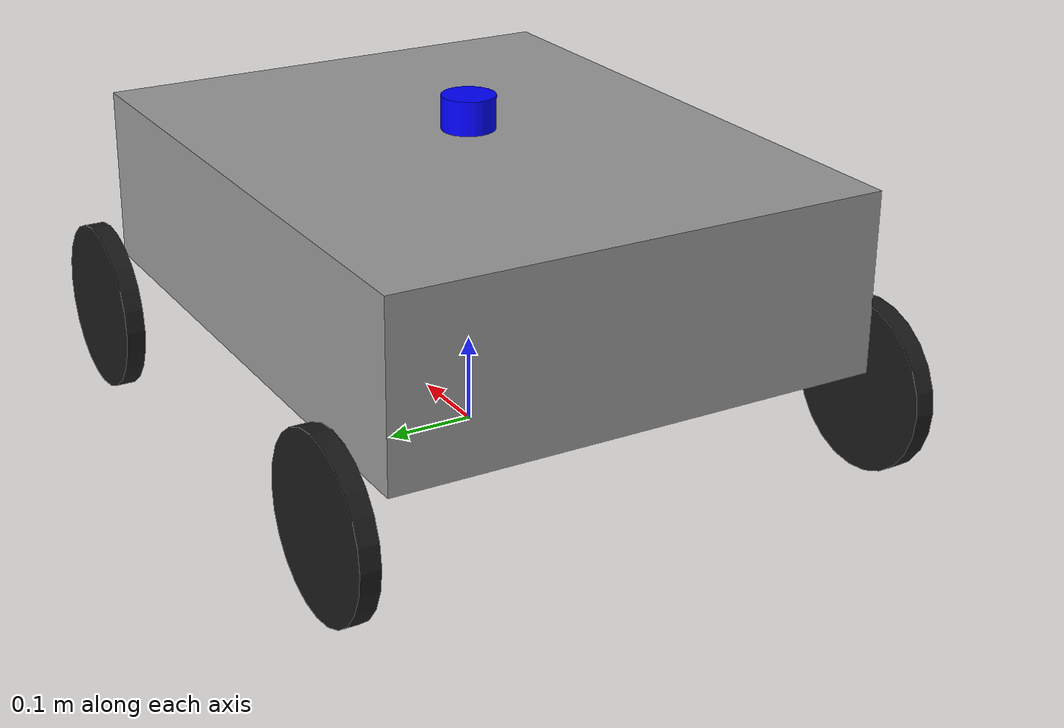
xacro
<?xml version="1.0"?>
<robot name="delivery_bot" xmlns:xacro="http://ros.org/wiki/xacro">

  <!-- Chassis -->
  <link name="base_link">
    <visual>
      <geometry>
        <box size="0.6969 0.55639 0.2"/>
      </geometry>
      <origin xyz="0 0 0.23652" rpy="0 0 0"/>
      <material name="grey">
        <color rgba="0.6 0.6 0.6 1.0"/>
      </material>
    </visual>
    <collision>
      <geometry>
        <box size="0.6969 0.55639 0.2"/>
      </geometry>
      <origin xyz="0 0 0.23652" rpy="0 0 0"/>
    </collision>
    <inertial>
      <mass value="10.0"/>
      <inertia ixx="0.5" ixy="0.0" ixz="0.0" iyy="0.5" iyz="0.0" izz="0.5"/>
      <origin xyz="0 0 0.23652"/>
    </inertial>
  </link>

  <!-- LIDAR -->
  <link name="laser_link">
    <visual>
      <geometry>
        <cylinder radius="0.03" length="0.038"/>
      </geometry>
      <origin xyz="0 0 0.35652" rpy="0 0 0"/>
      <material name="blue">
        <color rgba="0.0 0.0 1.0 1.0"/>
      </material>
    </visual>
    <collision>
      <geometry>
        <cylinder radius="0.03" length="0.038"/>
      </geometry>
      <origin xyz="0 0 0.35652" rpy="0 0 0"/>
    </collision>
    <inertial>
      <mass value="0.2"/>
      <inertia ixx="0.001" ixy="0.0" ixz="0.0" iyy="0.001" iyz="0.0" izz="0.001"/>
      <origin xyz="0 0 0.35652"/>
    </inertial>
  </link>

  <joint name="laser_joint" type="fixed">
    <parent link="base_link"/>
    <child link="laser_link"/>
    <origin xyz="0 0 0.01" rpy="0 0 0"/>
  </joint>

  <!-- IMU -->
  <link name="imu_link">
    <visual>
      <geometry>
        <box size="0.05 0.02 0.02"/>
      </geometry>
      <origin xyz="0 0 0.3" rpy="0 0 0"/>
      <material name="green">
        <color rgba="0.0 1.0 0.0 1.0"/>
      </material>
    </visual>
    <collision>
      <geometry>
        <box size="0.05 0.02 0.02"/>
      </geometry>
      <origin xyz="0 0 0.3" rpy="0 0 0"/>
    </collision>
    <inertial>
      <mass value="0.1"/>
      <inertia ixx="0.0001" ixy="0.0" ixz="0.0" iyy="0.0001" iyz="0.0" izz="0.0001"/>
      <origin xyz="0 0 0.3"/>
    </inertial>
  </link>

  <joint name="imu_joint" type="fixed">
    <parent link="base_link"/>
    <child link="imu_link"/>
    <origin xyz="0 0 0" rpy="0 0 0"/>
  </joint>

  <!-- Wheels (Links + Collisions + Inertials) -->
  <xacro:macro name="wheel" params="name">
    <link name="${name}">
      <visual>
        <geometry>
          <cylinder radius="0.09652" length="0.022"/>
        </geometry>
        <origin xyz="0 0 0" rpy="1.5708 0 0"/>
        <material name="black">
          <color rgba="0.1 0.1 0.1 1.0"/>
        </material>
      </visual>
      <collision>
        <geometry>
          <cylinder radius="0.09652" length="0.022"/>
        </geometry>
        <origin xyz="0 0 0" rpy="1.5708 0 0"/>
      </collision>
      <inertial>
        <mass value="1.0"/>
        <inertia ixx="0.01" ixy="0.0" ixz="0.0" iyy="0.01" iyz="0.0" izz="0.01"/>
        <origin xyz="0 0 0"/>
      </inertial>
    </link>
  </xacro:macro>

  <xacro:wheel name="left_front_wheel"/>
  <xacro:wheel name="left_rear_wheel"/>
  <xacro:wheel name="right_front_wheel"/>
  <xacro:wheel name="right_rear_wheel"/>

  <!-- Wheel Joints -->
  <joint name="left_front_joint" type="continuous">
    <parent link="base_link"/>
    <child link="left_front_wheel"/>
    <origin xyz="0.30 0.32 0.09652" rpy="0 0 0"/>
    <axis xyz="0 1 0"/>
  </joint>

  <joint name="left_rear_joint" type="continuous">
    <parent link="base_link"/>
    <child link="left_rear_wheel"/>
    <origin xyz="-0.30 0.32 0.09652" rpy="0 0 0"/>
    <axis xyz="0 1 0"/>
  </joint>

  <joint name="right_front_joint" type="continuous">
    <parent link="base_link"/>
    <child link="right_front_wheel"/>
    <origin xyz="0.30 -0.32 0.09652" rpy="0 0 0"/>
    <axis xyz="0 1 0"/>
  </joint>

  <joint name="right_rear_joint" type="continuous">
    <parent link="base_link"/>
    <child link="right_rear_wheel"/>
    <origin xyz="-0.30 -0.32 0.09652" rpy="0 0 0"/>
    <axis xyz="0 1 0"/>
  </joint>

</robot>
